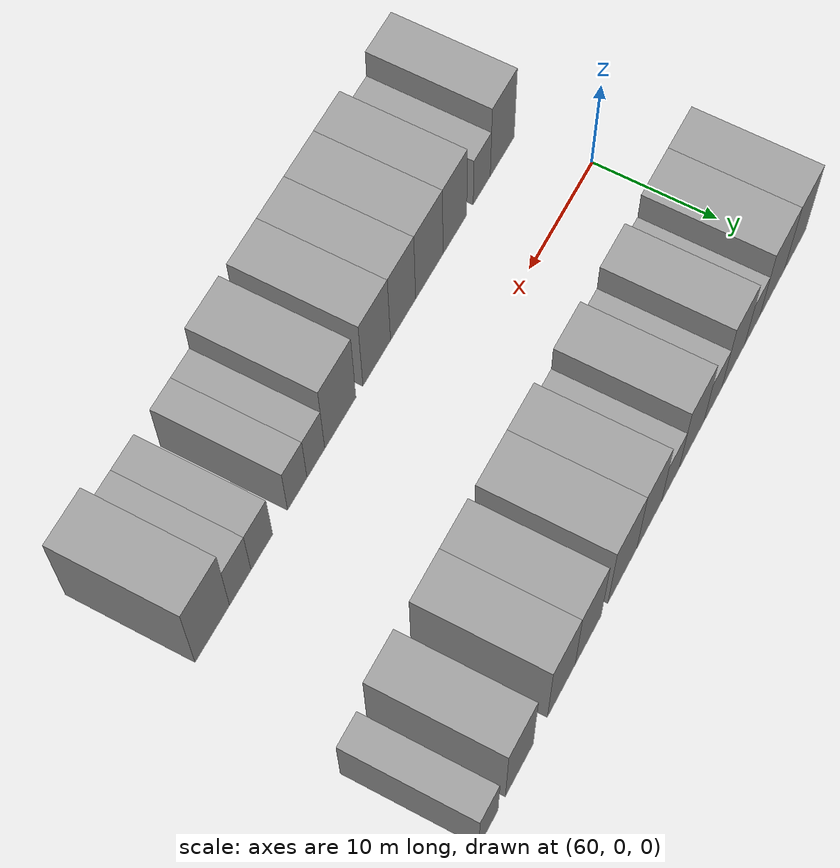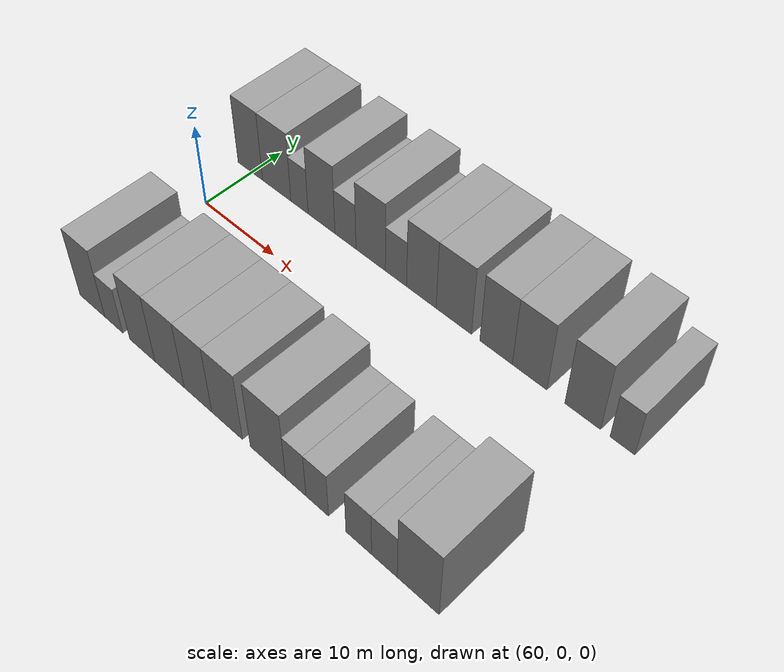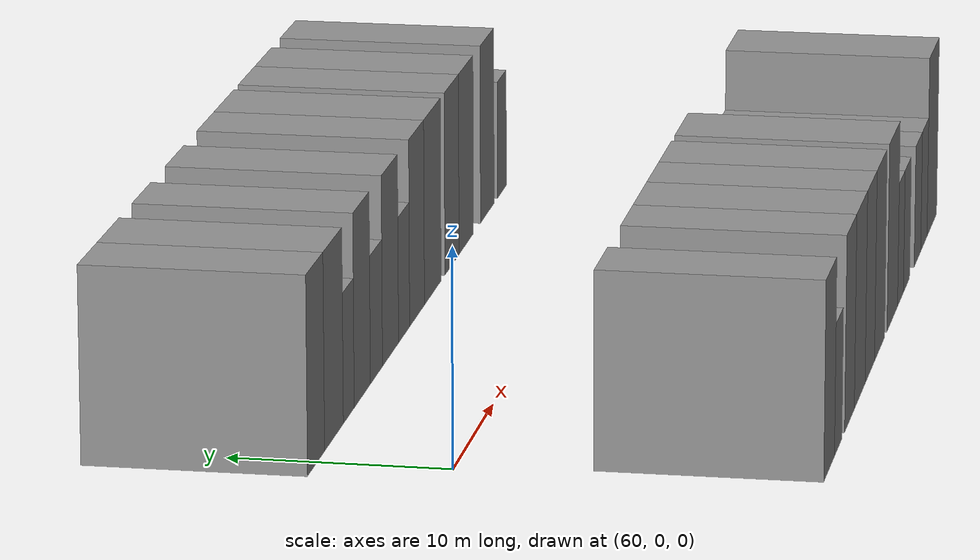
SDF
<sdf version="1.6">
 <world name="default">
  <model name="building_14">
   <static>1</static>
   <pose>59.8101 11.0000 0 0.000000 0.000000 1.570796</pose>
   <link name="link">
    <pose>0 0 4.50 0 0 0</pose>
    <collision name="collision"><geometry><box><size>10.0000 3.7348 9.0000</size></box></geometry></collision>
    <visual name="visual">
     <cast_shadows>0</cast_shadows>
     <geometry><box><size>10.0000 3.7348 9.0000</size></box></geometry>
     <material>
      <script>
       <uri>model://grey_wall/materials/scripts</uri>
       <uri>model://grey_wall/materials/textures</uri>
       <name>vrc/grey_wall</name>
      </script>
     </material>
    </visual>
   </link>
  </model>
  <model name="building_15">
   <static>1</static>
   <pose>63.7814 11.0000 0 0.000000 0.000000 1.570796</pose>
   <link name="link">
    <pose>0 0 4.50 0 0 0</pose>
    <collision name="collision"><geometry><box><size>10.0000 4.2078 9.0000</size></box></geometry></collision>
    <visual name="visual">
     <cast_shadows>0</cast_shadows>
     <geometry><box><size>10.0000 4.2078 9.0000</size></box></geometry>
     <material>
      <script>
       <uri>model://grey_wall/materials/scripts</uri>
       <uri>model://grey_wall/materials/textures</uri>
       <name>vrc/grey_wall</name>
      </script>
     </material>
    </visual>
   </link>
  </model>
  <model name="building_16">
   <static>1</static>
   <pose>67.1311 11.0000 0 0.000000 0.000000 1.570796</pose>
   <link name="link">
    <pose>0 0 3.00 0 0 0</pose>
    <collision name="collision"><geometry><box><size>10.0000 2.4916 6.0000</size></box></geometry></collision>
    <visual name="visual">
     <cast_shadows>0</cast_shadows>
     <geometry><box><size>10.0000 2.4916 6.0000</size></box></geometry>
     <material>
      <script>
       <uri>model://grey_wall/materials/scripts</uri>
       <uri>model://grey_wall/materials/textures</uri>
       <name>vrc/grey_wall</name>
      </script>
     </material>
    </visual>
   </link>
  </model>
  <model name="building_17">
   <static>1</static>
   <pose>70.2691 11.0000 0 0.000000 0.000000 1.570796</pose>
   <link name="link">
    <pose>0 0 4.50 0 0 0</pose>
    <collision name="collision"><geometry><box><size>10.0000 3.7843 9.0000</size></box></geometry></collision>
    <visual name="visual">
     <cast_shadows>0</cast_shadows>
     <geometry><box><size>10.0000 3.7843 9.0000</size></box></geometry>
     <material>
      <script>
       <uri>model://grey_wall/materials/scripts</uri>
       <uri>model://grey_wall/materials/textures</uri>
       <name>vrc/grey_wall</name>
      </script>
     </material>
    </visual>
   </link>
  </model>
  <model name="building_18">
   <static>1</static>
   <pose>73.6063 11.0000 0 0.000000 0.000000 1.570796</pose>
   <link name="link">
    <pose>0 0 3.00 0 0 0</pose>
    <collision name="collision"><geometry><box><size>10.0000 2.8903 6.0000</size></box></geometry></collision>
    <visual name="visual">
     <cast_shadows>0</cast_shadows>
     <geometry><box><size>10.0000 2.8903 6.0000</size></box></geometry>
     <material>
      <script>
       <uri>model://grey_wall/materials/scripts</uri>
       <uri>model://grey_wall/materials/textures</uri>
       <name>vrc/grey_wall</name>
      </script>
     </material>
    </visual>
   </link>
  </model>
  <model name="building_19">
   <static>1</static>
   <pose>77.0199 11.0000 0 0.000000 0.000000 1.570796</pose>
   <link name="link">
    <pose>0 0 4.50 0 0 0</pose>
    <collision name="collision"><geometry><box><size>10.0000 3.9369 9.0000</size></box></geometry></collision>
    <visual name="visual">
     <cast_shadows>0</cast_shadows>
     <geometry><box><size>10.0000 3.9369 9.0000</size></box></geometry>
     <material>
      <script>
       <uri>model://grey_wall/materials/scripts</uri>
       <uri>model://grey_wall/materials/textures</uri>
       <name>vrc/grey_wall</name>
      </script>
     </material>
    </visual>
   </link>
  </model>
  <model name="building_20">
   <static>1</static>
   <pose>80.3726 11.0000 0 0.000000 0.000000 1.570796</pose>
   <link name="link">
    <pose>0 0 3.00 0 0 0</pose>
    <collision name="collision"><geometry><box><size>10.0000 2.7685 6.0000</size></box></geometry></collision>
    <visual name="visual">
     <cast_shadows>0</cast_shadows>
     <geometry><box><size>10.0000 2.7685 6.0000</size></box></geometry>
     <material>
      <script>
       <uri>model://grey_wall/materials/scripts</uri>
       <uri>model://grey_wall/materials/textures</uri>
       <name>vrc/grey_wall</name>
      </script>
     </material>
    </visual>
   </link>
  </model>
  <model name="building_21">
   <static>1</static>
   <pose>83.6464 11.0000 0 0.000000 0.000000 1.570796</pose>
   <link name="link">
    <pose>0 0 4.50 0 0 0</pose>
    <collision name="collision"><geometry><box><size>10.0000 3.7791 9.0000</size></box></geometry></collision>
    <visual name="visual">
     <cast_shadows>0</cast_shadows>
     <geometry><box><size>10.0000 3.7791 9.0000</size></box></geometry>
     <material>
      <script>
       <uri>model://grey_wall/materials/scripts</uri>
       <uri>model://grey_wall/materials/textures</uri>
       <name>vrc/grey_wall</name>
      </script>
     </material>
    </visual>
   </link>
  </model>
  <model name="building_22">
   <static>1</static>
   <pose>87.7189 11.0000 0 0.000000 0.000000 1.570796</pose>
   <link name="link">
    <pose>0 0 4.50 0 0 0</pose>
    <collision name="collision"><geometry><box><size>10.0000 4.3659 9.0000</size></box></geometry></collision>
    <visual name="visual">
     <cast_shadows>0</cast_shadows>
     <geometry><box><size>10.0000 4.3659 9.0000</size></box></geometry>
     <material>
      <script>
       <uri>model://grey_wall/materials/scripts</uri>
       <uri>model://grey_wall/materials/textures</uri>
       <name>vrc/grey_wall</name>
      </script>
     </material>
    </visual>
   </link>
  </model>
  <model name="building_23">
   <static>1</static>
   <pose>92.8211 11.0000 0 0.000000 0.000000 1.570796</pose>
   <link name="link">
    <pose>0 0 4.50 0 0 0</pose>
    <collision name="collision"><geometry><box><size>10.0000 3.8386 9.0000</size></box></geometry></collision>
    <visual name="visual">
     <cast_shadows>0</cast_shadows>
     <geometry><box><size>10.0000 3.8386 9.0000</size></box></geometry>
     <material>
      <script>
       <uri>model://grey_wall/materials/scripts</uri>
       <uri>model://grey_wall/materials/textures</uri>
       <name>vrc/grey_wall</name>
      </script>
     </material>
    </visual>
   </link>
  </model>
  <model name="building_24">
   <static>1</static>
   <pose>96.7313 11.0000 0 0.000000 0.000000 1.570796</pose>
   <link name="link">
    <pose>0 0 4.50 0 0 0</pose>
    <collision name="collision"><geometry><box><size>10.0000 3.9817 9.0000</size></box></geometry></collision>
    <visual name="visual">
     <cast_shadows>0</cast_shadows>
     <geometry><box><size>10.0000 3.9817 9.0000</size></box></geometry>
     <material>
      <script>
       <uri>model://grey_wall/materials/scripts</uri>
       <uri>model://grey_wall/materials/textures</uri>
       <name>vrc/grey_wall</name>
      </script>
     </material>
    </visual>
   </link>
  </model>
  <model name="building_25">
   <static>1</static>
   <pose>102.6719 11.0000 0 0.000000 0.000000 1.570796</pose>
   <link name="link">
    <pose>0 0 4.50 0 0 0</pose>
    <collision name="collision"><geometry><box><size>10.0000 3.8996 9.0000</size></box></geometry></collision>
    <visual name="visual">
     <cast_shadows>0</cast_shadows>
     <geometry><box><size>10.0000 3.8996 9.0000</size></box></geometry>
     <material>
      <script>
       <uri>model://grey_wall/materials/scripts</uri>
       <uri>model://grey_wall/materials/textures</uri>
       <name>vrc/grey_wall</name>
      </script>
     </material>
    </visual>
   </link>
  </model>
  <model name="building_26">
   <static>1</static>
   <pose>106.9295 11.0000 0 0.000000 0.000000 1.570796</pose>
   <link name="link">
    <pose>0 0 3.00 0 0 0</pose>
    <collision name="collision"><geometry><box><size>10.0000 2.6156 6.0000</size></box></geometry></collision>
    <visual name="visual">
     <cast_shadows>0</cast_shadows>
     <geometry><box><size>10.0000 2.6156 6.0000</size></box></geometry>
     <material>
      <script>
       <uri>model://grey_wall/materials/scripts</uri>
       <uri>model://grey_wall/materials/textures</uri>
       <name>vrc/grey_wall</name>
      </script>
     </material>
    </visual>
   </link>
  </model>
  <model name="building_66">
   <static>1</static>
   <pose>62.6873 -11.0000 0 0.000000 0.000000 1.570796</pose>
   <link name="link">
    <pose>0 0 4.50 0 0 0</pose>
    <collision name="collision"><geometry><box><size>10.0000 3.7800 9.0000</size></box></geometry></collision>
    <visual name="visual">
     <cast_shadows>0</cast_shadows>
     <geometry><box><size>10.0000 3.7800 9.0000</size></box></geometry>
     <material>
      <script>
       <uri>model://grey_wall/materials/scripts</uri>
       <uri>model://grey_wall/materials/textures</uri>
       <name>vrc/grey_wall</name>
      </script>
     </material>
    </visual>
   </link>
  </model>
  <model name="building_67">
   <static>1</static>
   <pose>65.9025 -11.0000 0 0.000000 0.000000 1.570796</pose>
   <link name="link">
    <pose>0 0 3.00 0 0 0</pose>
    <collision name="collision"><geometry><box><size>10.0000 2.6505 6.0000</size></box></geometry></collision>
    <visual name="visual">
     <cast_shadows>0</cast_shadows>
     <geometry><box><size>10.0000 2.6505 6.0000</size></box></geometry>
     <material>
      <script>
       <uri>model://grey_wall/materials/scripts</uri>
       <uri>model://grey_wall/materials/textures</uri>
       <name>vrc/grey_wall</name>
      </script>
     </material>
    </visual>
   </link>
  </model>
  <model name="building_68">
   <static>1</static>
   <pose>70.0412 -11.0000 0 0.000000 0.000000 1.570796</pose>
   <link name="link">
    <pose>0 0 4.50 0 0 0</pose>
    <collision name="collision"><geometry><box><size>10.0000 3.6270 9.0000</size></box></geometry></collision>
    <visual name="visual">
     <cast_shadows>0</cast_shadows>
     <geometry><box><size>10.0000 3.6270 9.0000</size></box></geometry>
     <material>
      <script>
       <uri>model://grey_wall/materials/scripts</uri>
       <uri>model://grey_wall/materials/textures</uri>
       <name>vrc/grey_wall</name>
      </script>
     </material>
    </visual>
   </link>
  </model>
  <model name="building_69">
   <static>1</static>
   <pose>73.8972 -11.0000 0 0.000000 0.000000 1.570796</pose>
   <link name="link">
    <pose>0 0 4.50 0 0 0</pose>
    <collision name="collision"><geometry><box><size>10.0000 4.0849 9.0000</size></box></geometry></collision>
    <visual name="visual">
     <cast_shadows>0</cast_shadows>
     <geometry><box><size>10.0000 4.0849 9.0000</size></box></geometry>
     <material>
      <script>
       <uri>model://grey_wall/materials/scripts</uri>
       <uri>model://grey_wall/materials/textures</uri>
       <name>vrc/grey_wall</name>
      </script>
     </material>
    </visual>
   </link>
  </model>
  <model name="building_70">
   <static>1</static>
   <pose>77.7819 -11.0000 0 0.000000 0.000000 1.570796</pose>
   <link name="link">
    <pose>0 0 4.50 0 0 0</pose>
    <collision name="collision"><geometry><box><size>10.0000 3.6844 9.0000</size></box></geometry></collision>
    <visual name="visual">
     <cast_shadows>0</cast_shadows>
     <geometry><box><size>10.0000 3.6844 9.0000</size></box></geometry>
     <material>
      <script>
       <uri>model://grey_wall/materials/scripts</uri>
       <uri>model://grey_wall/materials/textures</uri>
       <name>vrc/grey_wall</name>
      </script>
     </material>
    </visual>
   </link>
  </model>
  <model name="building_71">
   <static>1</static>
   <pose>81.6111 -11.0000 0 0.000000 0.000000 1.570796</pose>
   <link name="link">
    <pose>0 0 4.50 0 0 0</pose>
    <collision name="collision"><geometry><box><size>10.0000 3.9740 9.0000</size></box></geometry></collision>
    <visual name="visual">
     <cast_shadows>0</cast_shadows>
     <geometry><box><size>10.0000 3.9740 9.0000</size></box></geometry>
     <material>
      <script>
       <uri>model://grey_wall/materials/scripts</uri>
       <uri>model://grey_wall/materials/textures</uri>
       <name>vrc/grey_wall</name>
      </script>
     </material>
    </visual>
   </link>
  </model>
  <model name="building_72">
   <static>1</static>
   <pose>86.7866 -11.0000 0 0.000000 0.000000 1.570796</pose>
   <link name="link">
    <pose>0 0 4.50 0 0 0</pose>
    <collision name="collision"><geometry><box><size>10.0000 4.3771 9.0000</size></box></geometry></collision>
    <visual name="visual">
     <cast_shadows>0</cast_shadows>
     <geometry><box><size>10.0000 4.3771 9.0000</size></box></geometry>
     <material>
      <script>
       <uri>model://grey_wall/materials/scripts</uri>
       <uri>model://grey_wall/materials/textures</uri>
       <name>vrc/grey_wall</name>
      </script>
     </material>
    </visual>
   </link>
  </model>
  <model name="building_73">
   <static>1</static>
   <pose>90.2023 -11.0000 0 0.000000 0.000000 1.570796</pose>
   <link name="link">
    <pose>0 0 3.00 0 0 0</pose>
    <collision name="collision"><geometry><box><size>10.0000 2.4543 6.0000</size></box></geometry></collision>
    <visual name="visual">
     <cast_shadows>0</cast_shadows>
     <geometry><box><size>10.0000 2.4543 6.0000</size></box></geometry>
     <material>
      <script>
       <uri>model://grey_wall/materials/scripts</uri>
       <uri>model://grey_wall/materials/textures</uri>
       <name>vrc/grey_wall</name>
      </script>
     </material>
    </visual>
   </link>
  </model>
  <model name="building_74">
   <static>1</static>
   <pose>92.7566 -11.0000 0 0.000000 0.000000 1.570796</pose>
   <link name="link">
    <pose>0 0 3.00 0 0 0</pose>
    <collision name="collision"><geometry><box><size>10.0000 2.6543 6.0000</size></box></geometry></collision>
    <visual name="visual">
     <cast_shadows>0</cast_shadows>
     <geometry><box><size>10.0000 2.6543 6.0000</size></box></geometry>
     <material>
      <script>
       <uri>model://grey_wall/materials/scripts</uri>
       <uri>model://grey_wall/materials/textures</uri>
       <name>vrc/grey_wall</name>
      </script>
     </material>
    </visual>
   </link>
  </model>
  <model name="building_75">
   <static>1</static>
   <pose>97.5259 -11.0000 0 0.000000 0.000000 1.570796</pose>
   <link name="link">
    <pose>0 0 3.00 0 0 0</pose>
    <collision name="collision"><geometry><box><size>10.0000 2.8841 6.0000</size></box></geometry></collision>
    <visual name="visual">
     <cast_shadows>0</cast_shadows>
     <geometry><box><size>10.0000 2.8841 6.0000</size></box></geometry>
     <material>
      <script>
       <uri>model://grey_wall/materials/scripts</uri>
       <uri>model://grey_wall/materials/textures</uri>
       <name>vrc/grey_wall</name>
      </script>
     </material>
    </visual>
   </link>
  </model>
  <model name="building_76">
   <static>1</static>
   <pose>100.3768 -11.0000 0 0.000000 0.000000 1.570796</pose>
   <link name="link">
    <pose>0 0 3.00 0 0 0</pose>
    <collision name="collision"><geometry><box><size>10.0000 2.8179 6.0000</size></box></geometry></collision>
    <visual name="visual">
     <cast_shadows>0</cast_shadows>
     <geometry><box><size>10.0000 2.8179 6.0000</size></box></geometry>
     <material>
      <script>
       <uri>model://grey_wall/materials/scripts</uri>
       <uri>model://grey_wall/materials/textures</uri>
       <name>vrc/grey_wall</name>
      </script>
     </material>
    </visual>
   </link>
  </model>
  <model name="building_77">
   <static>1</static>
   <pose>104.0072 -11.0000 0 0.000000 0.000000 1.570796</pose>
   <link name="link">
    <pose>0 0 4.50 0 0 0</pose>
    <collision name="collision"><geometry><box><size>10.0000 4.4429 9.0000</size></box></geometry></collision>
    <visual name="visual">
     <cast_shadows>0</cast_shadows>
     <geometry><box><size>10.0000 4.4429 9.0000</size></box></geometry>
     <material>
      <script>
       <uri>model://grey_wall/materials/scripts</uri>
       <uri>model://grey_wall/materials/textures</uri>
       <name>vrc/grey_wall</name>
      </script>
     </material>
    </visual>
   </link>
  </model>
 </world>
</sdf>
